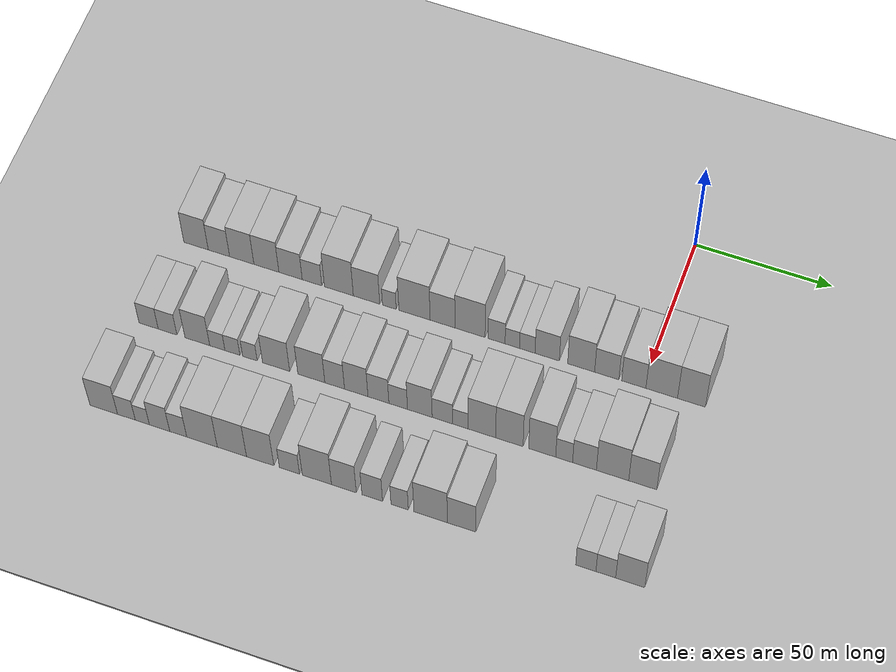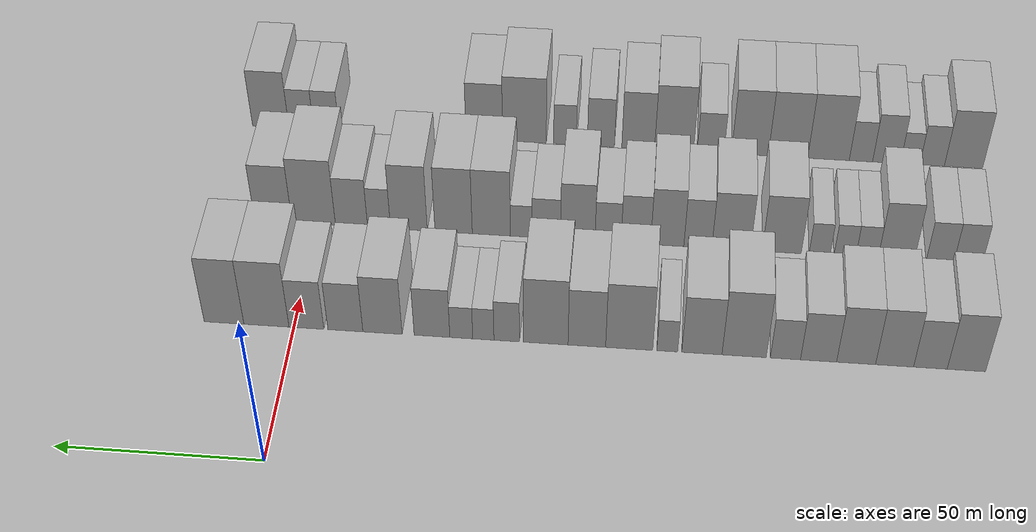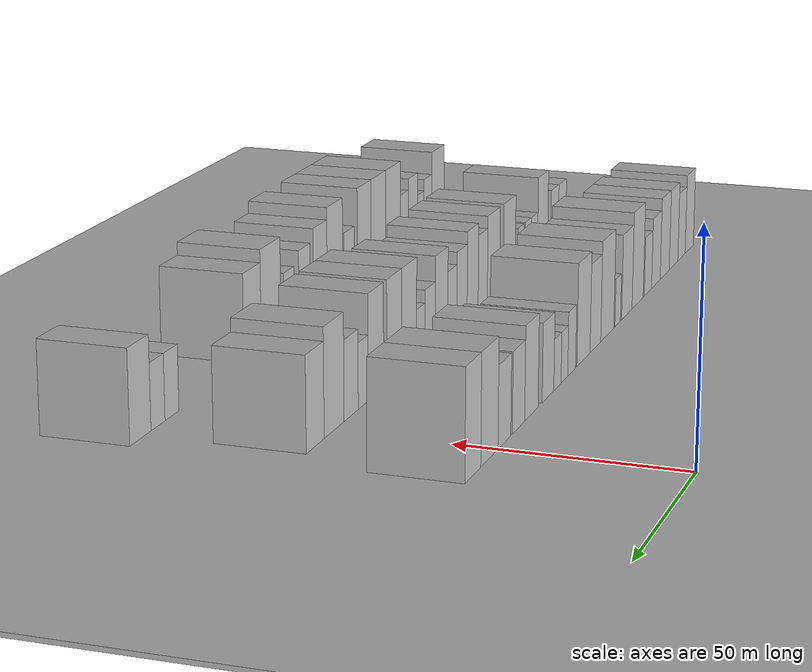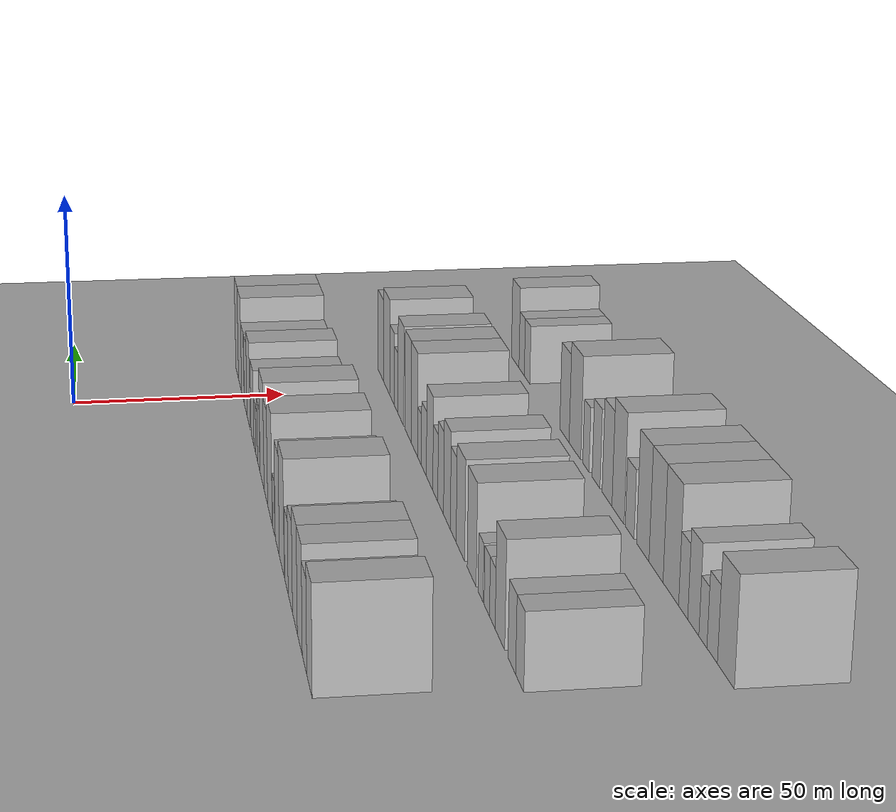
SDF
<sdf version="1.6">
 <world name="default">
  <include><name>ground_plane_1</name><uri>model://HANNAS_ground_plane</uri></include>
  <include>
   <name>ground_plane_2</name>
   <uri>model://HANNAS_ground_plane</uri>
   <pose>100 0 0  0 0 0</pose>
  </include>
  <model name="building_21">
   <static>1</static>
   <pose>50.0000 -164.9927 0 0.000000 0.000000 0.000000</pose>
   <link name="link">
    <pose>0 0 10.50 0 0 0</pose>
    <collision name="collision"><geometry><box><size>20.0000 9.2410 21.0000</size></box></geometry></collision>
    <visual name="visual">
     <cast_shadows>0</cast_shadows>
     <geometry><box><size>20.0000 9.2410 21.0000</size></box></geometry>
     <material>
      <script>
       <uri>model://HANNAS_wall/materials/scripts</uri>
       <uri>model://HANNAS_wall/materials/textures</uri>
       <name>vrc/HANNAS_wall</name>
      </script>
     </material>
    </visual>
   </link>
  </model>
  <model name="building_22">
   <static>1</static>
   <pose>50.0000 -156.3295 0 0.000000 0.000000 0.000000</pose>
   <link name="link">
    <pose>0 0 9.00 0 0 0</pose>
    <collision name="collision"><geometry><box><size>20.0000 8.0855 18.0000</size></box></geometry></collision>
    <visual name="visual">
     <cast_shadows>0</cast_shadows>
     <geometry><box><size>20.0000 8.0855 18.0000</size></box></geometry>
     <material>
      <script>
       <uri>model://HANNAS_wall/materials/scripts</uri>
       <uri>model://HANNAS_wall/materials/textures</uri>
       <name>vrc/HANNAS_wall</name>
      </script>
     </material>
    </visual>
   </link>
  </model>
  <model name="building_23">
   <static>1</static>
   <pose>50.0000 -147.6939 0 0.000000 0.000000 0.000000</pose>
   <link name="link">
    <pose>0 0 10.50 0 0 0</pose>
    <collision name="collision"><geometry><box><size>20.0000 9.1857 21.0000</size></box></geometry></collision>
    <visual name="visual">
     <cast_shadows>0</cast_shadows>
     <geometry><box><size>20.0000 9.1857 21.0000</size></box></geometry>
     <material>
      <script>
       <uri>model://HANNAS_wall/materials/scripts</uri>
       <uri>model://HANNAS_wall/materials/textures</uri>
       <name>vrc/HANNAS_wall</name>
      </script>
     </material>
    </visual>
   </link>
  </model>
  <model name="building_24">
   <static>1</static>
   <pose>50.0000 -138.3923 0 0.000000 0.000000 0.000000</pose>
   <link name="link">
    <pose>0 0 10.50 0 0 0</pose>
    <collision name="collision"><geometry><box><size>20.0000 9.4174 21.0000</size></box></geometry></collision>
    <visual name="visual">
     <cast_shadows>0</cast_shadows>
     <geometry><box><size>20.0000 9.4174 21.0000</size></box></geometry>
     <material>
      <script>
       <uri>model://HANNAS_wall/materials/scripts</uri>
       <uri>model://HANNAS_wall/materials/textures</uri>
       <name>vrc/HANNAS_wall</name>
      </script>
     </material>
    </visual>
   </link>
  </model>
  <model name="building_25">
   <static>1</static>
   <pose>50.0000 -129.3081 0 0.000000 0.000000 0.000000</pose>
   <link name="link">
    <pose>0 0 9.00 0 0 0</pose>
    <collision name="collision"><geometry><box><size>20.0000 8.7510 18.0000</size></box></geometry></collision>
    <visual name="visual">
     <cast_shadows>0</cast_shadows>
     <geometry><box><size>20.0000 8.7510 18.0000</size></box></geometry>
     <material>
      <script>
       <uri>model://HANNAS_wall/materials/scripts</uri>
       <uri>model://HANNAS_wall/materials/textures</uri>
       <name>vrc/HANNAS_wall</name>
      </script>
     </material>
    </visual>
   </link>
  </model>
  <model name="building_26">
   <static>1</static>
   <pose>50.0000 -121.2679 0 0.000000 0.000000 0.000000</pose>
   <link name="link">
    <pose>0 0 7.50 0 0 0</pose>
    <collision name="collision"><geometry><box><size>20.0000 7.3296 15.0000</size></box></geometry></collision>
    <visual name="visual">
     <cast_shadows>0</cast_shadows>
     <geometry><box><size>20.0000 7.3296 15.0000</size></box></geometry>
     <material>
      <script>
       <uri>model://HANNAS_wall/materials/scripts</uri>
       <uri>model://HANNAS_wall/materials/textures</uri>
       <name>vrc/HANNAS_wall</name>
      </script>
     </material>
    </visual>
   </link>
  </model>
  <model name="building_27">
   <static>1</static>
   <pose>50.0000 -111.2162 0 0.000000 0.000000 0.000000</pose>
   <link name="link">
    <pose>0 0 12.00 0 0 0</pose>
    <collision name="collision"><geometry><box><size>20.0000 10.7738 24.0000</size></box></geometry></collision>
    <visual name="visual">
     <cast_shadows>0</cast_shadows>
     <geometry><box><size>20.0000 10.7738 24.0000</size></box></geometry>
     <material>
      <script>
       <uri>model://HANNAS_wall/materials/scripts</uri>
       <uri>model://HANNAS_wall/materials/textures</uri>
       <name>vrc/HANNAS_wall</name>
      </script>
     </material>
    </visual>
   </link>
  </model>
  <model name="building_28">
   <static>1</static>
   <pose>50.0000 -100.9177 0 0.000000 0.000000 0.000000</pose>
   <link name="link">
    <pose>0 0 10.50 0 0 0</pose>
    <collision name="collision"><geometry><box><size>20.0000 9.8232 21.0000</size></box></geometry></collision>
    <visual name="visual">
     <cast_shadows>0</cast_shadows>
     <geometry><box><size>20.0000 9.8232 21.0000</size></box></geometry>
     <material>
      <script>
       <uri>model://HANNAS_wall/materials/scripts</uri>
       <uri>model://HANNAS_wall/materials/textures</uri>
       <name>vrc/HANNAS_wall</name>
      </script>
     </material>
    </visual>
   </link>
  </model>
  <model name="building_29">
   <static>1</static>
   <pose>50.0000 -92.4581 0 0.000000 0.000000 0.000000</pose>
   <link name="link">
    <pose>0 0 6.00 0 0 0</pose>
    <collision name="collision"><geometry><box><size>20.0000 5.0960 12.0000</size></box></geometry></collision>
    <visual name="visual">
     <cast_shadows>0</cast_shadows>
     <geometry><box><size>20.0000 5.0960 12.0000</size></box></geometry>
     <material>
      <script>
       <uri>model://HANNAS_wall/materials/scripts</uri>
       <uri>model://HANNAS_wall/materials/textures</uri>
       <name>vrc/HANNAS_wall</name>
      </script>
     </material>
    </visual>
   </link>
  </model>
  <model name="building_30">
   <static>1</static>
   <pose>50.0000 -83.1273 0 0.000000 0.000000 0.000000</pose>
   <link name="link">
    <pose>0 0 12.00 0 0 0</pose>
    <collision name="collision"><geometry><box><size>20.0000 11.5656 24.0000</size></box></geometry></collision>
    <visual name="visual">
     <cast_shadows>0</cast_shadows>
     <geometry><box><size>20.0000 11.5656 24.0000</size></box></geometry>
     <material>
      <script>
       <uri>model://HANNAS_wall/materials/scripts</uri>
       <uri>model://HANNAS_wall/materials/textures</uri>
       <name>vrc/HANNAS_wall</name>
      </script>
     </material>
    </visual>
   </link>
  </model>
  <model name="building_31">
   <static>1</static>
   <pose>50.0000 -72.7295 0 0.000000 0.000000 0.000000</pose>
   <link name="link">
    <pose>0 0 10.50 0 0 0</pose>
    <collision name="collision"><geometry><box><size>20.0000 9.2299 21.0000</size></box></geometry></collision>
    <visual name="visual">
     <cast_shadows>0</cast_shadows>
     <geometry><box><size>20.0000 9.2299 21.0000</size></box></geometry>
     <material>
      <script>
       <uri>model://HANNAS_wall/materials/scripts</uri>
       <uri>model://HANNAS_wall/materials/textures</uri>
       <name>vrc/HANNAS_wall</name>
      </script>
     </material>
    </visual>
   </link>
  </model>
  <model name="building_32">
   <static>1</static>
   <pose>50.0000 -62.6246 0 0.000000 0.000000 0.000000</pose>
   <link name="link">
    <pose>0 0 12.00 0 0 0</pose>
    <collision name="collision"><geometry><box><size>20.0000 10.9799 24.0000</size></box></geometry></collision>
    <visual name="visual">
     <cast_shadows>0</cast_shadows>
     <geometry><box><size>20.0000 10.9799 24.0000</size></box></geometry>
     <material>
      <script>
       <uri>model://HANNAS_wall/materials/scripts</uri>
       <uri>model://HANNAS_wall/materials/textures</uri>
       <name>vrc/HANNAS_wall</name>
      </script>
     </material>
    </visual>
   </link>
  </model>
  <model name="building_33">
   <static>1</static>
   <pose>50.0000 -52.9839 0 0.000000 0.000000 0.000000</pose>
   <link name="link">
    <pose>0 0 7.50 0 0 0</pose>
    <collision name="collision"><geometry><box><size>20.0000 6.3014 15.0000</size></box></geometry></collision>
    <visual name="visual">
     <cast_shadows>0</cast_shadows>
     <geometry><box><size>20.0000 6.3014 15.0000</size></box></geometry>
     <material>
      <script>
       <uri>model://HANNAS_wall/materials/scripts</uri>
       <uri>model://HANNAS_wall/materials/textures</uri>
       <name>vrc/HANNAS_wall</name>
      </script>
     </material>
    </visual>
   </link>
  </model>
  <model name="building_34">
   <static>1</static>
   <pose>50.0000 -47.2102 0 0.000000 0.000000 0.000000</pose>
   <link name="link">
    <pose>0 0 6.00 0 0 0</pose>
    <collision name="collision"><geometry><box><size>20.0000 5.2459 12.0000</size></box></geometry></collision>
    <visual name="visual">
     <cast_shadows>0</cast_shadows>
     <geometry><box><size>20.0000 5.2459 12.0000</size></box></geometry>
     <material>
      <script>
       <uri>model://HANNAS_wall/materials/scripts</uri>
       <uri>model://HANNAS_wall/materials/textures</uri>
       <name>vrc/HANNAS_wall</name>
      </script>
     </material>
    </visual>
   </link>
  </model>
  <model name="building_35">
   <static>1</static>
   <pose>50.0000 -41.7493 0 0.000000 0.000000 0.000000</pose>
   <link name="link">
    <pose>0 0 6.00 0 0 0</pose>
    <collision name="collision"><geometry><box><size>20.0000 5.6759 12.0000</size></box></geometry></collision>
    <visual name="visual">
     <cast_shadows>0</cast_shadows>
     <geometry><box><size>20.0000 5.6759 12.0000</size></box></geometry>
     <material>
      <script>
       <uri>model://HANNAS_wall/materials/scripts</uri>
       <uri>model://HANNAS_wall/materials/textures</uri>
       <name>vrc/HANNAS_wall</name>
      </script>
     </material>
    </visual>
   </link>
  </model>
  <model name="building_36">
   <static>1</static>
   <pose>50.0000 -34.4840 0 0.000000 0.000000 0.000000</pose>
   <link name="link">
    <pose>0 0 9.00 0 0 0</pose>
    <collision name="collision"><geometry><box><size>20.0000 8.8548 18.0000</size></box></geometry></collision>
    <visual name="visual">
     <cast_shadows>0</cast_shadows>
     <geometry><box><size>20.0000 8.8548 18.0000</size></box></geometry>
     <material>
      <script>
       <uri>model://HANNAS_wall/materials/scripts</uri>
       <uri>model://HANNAS_wall/materials/textures</uri>
       <name>vrc/HANNAS_wall</name>
      </script>
     </material>
    </visual>
   </link>
  </model>
  <model name="building_37">
   <static>1</static>
   <pose>50.0000 -22.1702 0 0.000000 0.000000 0.000000</pose>
   <link name="link">
    <pose>0 0 10.50 0 0 0</pose>
    <collision name="collision"><geometry><box><size>20.0000 9.7728 21.0000</size></box></geometry></collision>
    <visual name="visual">
     <cast_shadows>0</cast_shadows>
     <geometry><box><size>20.0000 9.7728 21.0000</size></box></geometry>
     <material>
      <script>
       <uri>model://HANNAS_wall/materials/scripts</uri>
       <uri>model://HANNAS_wall/materials/textures</uri>
       <name>vrc/HANNAS_wall</name>
      </script>
     </material>
    </visual>
   </link>
  </model>
  <model name="building_38">
   <static>1</static>
   <pose>50.0000 -12.9144 0 0.000000 0.000000 0.000000</pose>
   <link name="link">
    <pose>0 0 9.00 0 0 0</pose>
    <collision name="collision"><geometry><box><size>20.0000 8.7387 18.0000</size></box></geometry></collision>
    <visual name="visual">
     <cast_shadows>0</cast_shadows>
     <geometry><box><size>20.0000 8.7387 18.0000</size></box></geometry>
     <material>
      <script>
       <uri>model://HANNAS_wall/materials/scripts</uri>
       <uri>model://HANNAS_wall/materials/textures</uri>
       <name>vrc/HANNAS_wall</name>
      </script>
     </material>
    </visual>
   </link>
  </model>
  <model name="building_39">
   <static>1</static>
   <pose>50.0000 -3.1798 0 0.000000 0.000000 0.000000</pose>
   <link name="link">
    <pose>0 0 9.00 0 0 0</pose>
    <collision name="collision"><geometry><box><size>20.0000 8.7305 18.0000</size></box></geometry></collision>
    <visual name="visual">
     <cast_shadows>0</cast_shadows>
     <geometry><box><size>20.0000 8.7305 18.0000</size></box></geometry>
     <material>
      <script>
       <uri>model://HANNAS_wall/materials/scripts</uri>
       <uri>model://HANNAS_wall/materials/textures</uri>
       <name>vrc/HANNAS_wall</name>
      </script>
     </material>
    </visual>
   </link>
  </model>
  <model name="building_40">
   <static>1</static>
   <pose>50.0000 6.8428 0 0.000000 0.000000 0.000000</pose>
   <link name="link">
    <pose>0 0 12.00 0 0 0</pose>
    <collision name="collision"><geometry><box><size>20.0000 11.3148 24.0000</size></box></geometry></collision>
    <visual name="visual">
     <cast_shadows>0</cast_shadows>
     <geometry><box><size>20.0000 11.3148 24.0000</size></box></geometry>
     <material>
      <script>
       <uri>model://HANNAS_wall/materials/scripts</uri>
       <uri>model://HANNAS_wall/materials/textures</uri>
       <name>vrc/HANNAS_wall</name>
      </script>
     </material>
    </visual>
   </link>
  </model>
  <model name="building_41">
   <static>1</static>
   <pose>50.0000 17.4917 0 0.000000 0.000000 0.000000</pose>
   <link name="link">
    <pose>0 0 12.00 0 0 0</pose>
    <collision name="collision"><geometry><box><size>20.0000 9.9828 24.0000</size></box></geometry></collision>
    <visual name="visual">
     <cast_shadows>0</cast_shadows>
     <geometry><box><size>20.0000 9.9828 24.0000</size></box></geometry>
     <material>
      <script>
       <uri>model://HANNAS_wall/materials/scripts</uri>
       <uri>model://HANNAS_wall/materials/textures</uri>
       <name>vrc/HANNAS_wall</name>
      </script>
     </material>
    </visual>
   </link>
  </model>
  <model name="building_104">
   <static>1</static>
   <pose>85.0000 -168.2095 0 0.000000 0.000000 0.000000</pose>
   <link name="link">
    <pose>0 0 7.50 0 0 0</pose>
    <collision name="collision"><geometry><box><size>20.0000 7.1835 15.0000</size></box></geometry></collision>
    <visual name="visual">
     <cast_shadows>0</cast_shadows>
     <geometry><box><size>20.0000 7.1835 15.0000</size></box></geometry>
     <material>
      <script>
       <uri>model://HANNAS_wall/materials/scripts</uri>
       <uri>model://HANNAS_wall/materials/textures</uri>
       <name>vrc/HANNAS_wall</name>
      </script>
     </material>
    </visual>
   </link>
  </model>
  <model name="building_105">
   <static>1</static>
   <pose>85.0000 -161.1148 0 0.000000 0.000000 0.000000</pose>
   <link name="link">
    <pose>0 0 7.50 0 0 0</pose>
    <collision name="collision"><geometry><box><size>20.0000 7.0060 15.0000</size></box></geometry></collision>
    <visual name="visual">
     <cast_shadows>0</cast_shadows>
     <geometry><box><size>20.0000 7.0060 15.0000</size></box></geometry>
     <material>
      <script>
       <uri>model://HANNAS_wall/materials/scripts</uri>
       <uri>model://HANNAS_wall/materials/textures</uri>
       <name>vrc/HANNAS_wall</name>
      </script>
     </material>
    </visual>
   </link>
  </model>
  <model name="building_106">
   <static>1</static>
   <pose>85.0000 -150.0036 0 0.000000 0.000000 0.000000</pose>
   <link name="link">
    <pose>0 0 10.50 0 0 0</pose>
    <collision name="collision"><geometry><box><size>20.0000 9.2163 21.0000</size></box></geometry></collision>
    <visual name="visual">
     <cast_shadows>0</cast_shadows>
     <geometry><box><size>20.0000 9.2163 21.0000</size></box></geometry>
     <material>
      <script>
       <uri>model://HANNAS_wall/materials/scripts</uri>
       <uri>model://HANNAS_wall/materials/textures</uri>
       <name>vrc/HANNAS_wall</name>
      </script>
     </material>
    </visual>
   </link>
  </model>
  <model name="building_107">
   <static>1</static>
   <pose>85.0000 -142.5542 0 0.000000 0.000000 0.000000</pose>
   <link name="link">
    <pose>0 0 6.00 0 0 0</pose>
    <collision name="collision"><geometry><box><size>20.0000 5.6826 12.0000</size></box></geometry></collision>
    <visual name="visual">
     <cast_shadows>0</cast_shadows>
     <geometry><box><size>20.0000 5.6826 12.0000</size></box></geometry>
     <material>
      <script>
       <uri>model://HANNAS_wall/materials/scripts</uri>
       <uri>model://HANNAS_wall/materials/textures</uri>
       <name>vrc/HANNAS_wall</name>
      </script>
     </material>
    </visual>
   </link>
  </model>
  <model name="building_108">
   <static>1</static>
   <pose>85.0000 -136.9341 0 0.000000 0.000000 0.000000</pose>
   <link name="link">
    <pose>0 0 6.00 0 0 0</pose>
    <collision name="collision"><geometry><box><size>20.0000 5.5576 12.0000</size></box></geometry></collision>
    <visual name="visual">
     <cast_shadows>0</cast_shadows>
     <geometry><box><size>20.0000 5.5576 12.0000</size></box></geometry>
     <material>
      <script>
       <uri>model://HANNAS_wall/materials/scripts</uri>
       <uri>model://HANNAS_wall/materials/textures</uri>
       <name>vrc/HANNAS_wall</name>
      </script>
     </material>
    </visual>
   </link>
  </model>
  <model name="building_109">
   <static>1</static>
   <pose>85.0000 -130.4637 0 0.000000 0.000000 0.000000</pose>
   <link name="link">
    <pose>0 0 6.00 0 0 0</pose>
    <collision name="collision"><geometry><box><size>20.0000 5.3832 12.0000</size></box></geometry></collision>
    <visual name="visual">
     <cast_shadows>0</cast_shadows>
     <geometry><box><size>20.0000 5.3832 12.0000</size></box></geometry>
     <material>
      <script>
       <uri>model://HANNAS_wall/materials/scripts</uri>
       <uri>model://HANNAS_wall/materials/textures</uri>
       <name>vrc/HANNAS_wall</name>
      </script>
     </material>
    </visual>
   </link>
  </model>
  <model name="building_110">
   <static>1</static>
   <pose>85.0000 -120.7647 0 0.000000 0.000000 0.000000</pose>
   <link name="link">
    <pose>0 0 10.50 0 0 0</pose>
    <collision name="collision"><geometry><box><size>20.0000 10.0150 21.0000</size></box></geometry></collision>
    <visual name="visual">
     <cast_shadows>0</cast_shadows>
     <geometry><box><size>20.0000 10.0150 21.0000</size></box></geometry>
     <material>
      <script>
       <uri>model://HANNAS_wall/materials/scripts</uri>
       <uri>model://HANNAS_wall/materials/textures</uri>
       <name>vrc/HANNAS_wall</name>
      </script>
     </material>
    </visual>
   </link>
  </model>
  <model name="building_111">
   <static>1</static>
   <pose>85.0000 -107.7956 0 0.000000 0.000000 0.000000</pose>
   <link name="link">
    <pose>0 0 10.50 0 0 0</pose>
    <collision name="collision"><geometry><box><size>20.0000 9.9232 21.0000</size></box></geometry></collision>
    <visual name="visual">
     <cast_shadows>0</cast_shadows>
     <geometry><box><size>20.0000 9.9232 21.0000</size></box></geometry>
     <material>
      <script>
       <uri>model://HANNAS_wall/materials/scripts</uri>
       <uri>model://HANNAS_wall/materials/textures</uri>
       <name>vrc/HANNAS_wall</name>
      </script>
     </material>
    </visual>
   </link>
  </model>
  <model name="building_112">
   <static>1</static>
   <pose>85.0000 -99.2287 0 0.000000 0.000000 0.000000</pose>
   <link name="link">
    <pose>0 0 9.00 0 0 0</pose>
    <collision name="collision"><geometry><box><size>20.0000 7.2106 18.0000</size></box></geometry></collision>
    <visual name="visual">
     <cast_shadows>0</cast_shadows>
     <geometry><box><size>20.0000 7.2106 18.0000</size></box></geometry>
     <material>
      <script>
       <uri>model://HANNAS_wall/materials/scripts</uri>
       <uri>model://HANNAS_wall/materials/textures</uri>
       <name>vrc/HANNAS_wall</name>
      </script>
     </material>
    </visual>
   </link>
  </model>
  <model name="building_113">
   <static>1</static>
   <pose>85.0000 -91.3439 0 0.000000 0.000000 0.000000</pose>
   <link name="link">
    <pose>0 0 10.50 0 0 0</pose>
    <collision name="collision"><geometry><box><size>20.0000 8.5589 21.0000</size></box></geometry></collision>
    <visual name="visual">
     <cast_shadows>0</cast_shadows>
     <geometry><box><size>20.0000 8.5589 21.0000</size></box></geometry>
     <material>
      <script>
       <uri>model://HANNAS_wall/materials/scripts</uri>
       <uri>model://HANNAS_wall/materials/textures</uri>
       <name>vrc/HANNAS_wall</name>
      </script>
     </material>
    </visual>
   </link>
  </model>
  <model name="building_114">
   <static>1</static>
   <pose>85.0000 -83.2496 0 0.000000 0.000000 0.000000</pose>
   <link name="link">
    <pose>0 0 9.00 0 0 0</pose>
    <collision name="collision"><geometry><box><size>20.0000 7.6297 18.0000</size></box></geometry></collision>
    <visual name="visual">
     <cast_shadows>0</cast_shadows>
     <geometry><box><size>20.0000 7.6297 18.0000</size></box></geometry>
     <material>
      <script>
       <uri>model://HANNAS_wall/materials/scripts</uri>
       <uri>model://HANNAS_wall/materials/textures</uri>
       <name>vrc/HANNAS_wall</name>
      </script>
     </material>
    </visual>
   </link>
  </model>
  <model name="building_115">
   <static>1</static>
   <pose>85.0000 -76.0571 0 0.000000 0.000000 0.000000</pose>
   <link name="link">
    <pose>0 0 7.50 0 0 0</pose>
    <collision name="collision"><geometry><box><size>20.0000 6.7553 15.0000</size></box></geometry></collision>
    <visual name="visual">
     <cast_shadows>0</cast_shadows>
     <geometry><box><size>20.0000 6.7553 15.0000</size></box></geometry>
     <material>
      <script>
       <uri>model://HANNAS_wall/materials/scripts</uri>
       <uri>model://HANNAS_wall/materials/textures</uri>
       <name>vrc/HANNAS_wall</name>
      </script>
     </material>
    </visual>
   </link>
  </model>
  <model name="building_116">
   <static>1</static>
   <pose>85.0000 -68.2027 0 0.000000 0.000000 0.000000</pose>
   <link name="link">
    <pose>0 0 10.50 0 0 0</pose>
    <collision name="collision"><geometry><box><size>20.0000 8.9535 21.0000</size></box></geometry></collision>
    <visual name="visual">
     <cast_shadows>0</cast_shadows>
     <geometry><box><size>20.0000 8.9535 21.0000</size></box></geometry>
     <material>
      <script>
       <uri>model://HANNAS_wall/materials/scripts</uri>
       <uri>model://HANNAS_wall/materials/textures</uri>
       <name>vrc/HANNAS_wall</name>
      </script>
     </material>
    </visual>
   </link>
  </model>
  <model name="building_117">
   <static>1</static>
   <pose>85.0000 -60.0503 0 0.000000 0.000000 0.000000</pose>
   <link name="link">
    <pose>0 0 7.50 0 0 0</pose>
    <collision name="collision"><geometry><box><size>20.0000 7.3514 15.0000</size></box></geometry></collision>
    <visual name="visual">
     <cast_shadows>0</cast_shadows>
     <geometry><box><size>20.0000 7.3514 15.0000</size></box></geometry>
     <material>
      <script>
       <uri>model://HANNAS_wall/materials/scripts</uri>
       <uri>model://HANNAS_wall/materials/textures</uri>
       <name>vrc/HANNAS_wall</name>
      </script>
     </material>
    </visual>
   </link>
  </model>
  <model name="building_118">
   <static>1</static>
   <pose>85.0000 -53.5465 0 0.000000 0.000000 0.000000</pose>
   <link name="link">
    <pose>0 0 6.00 0 0 0</pose>
    <collision name="collision"><geometry><box><size>20.0000 5.6562 12.0000</size></box></geometry></collision>
    <visual name="visual">
     <cast_shadows>0</cast_shadows>
     <geometry><box><size>20.0000 5.6562 12.0000</size></box></geometry>
     <material>
      <script>
       <uri>model://HANNAS_wall/materials/scripts</uri>
       <uri>model://HANNAS_wall/materials/textures</uri>
       <name>vrc/HANNAS_wall</name>
      </script>
     </material>
    </visual>
   </link>
  </model>
  <model name="building_119">
   <static>1</static>
   <pose>85.0000 -45.7519 0 0.000000 0.000000 0.000000</pose>
   <link name="link">
    <pose>0 0 12.00 0 0 0</pose>
    <collision name="collision"><geometry><box><size>20.0000 9.9330 24.0000</size></box></geometry></collision>
    <visual name="visual">
     <cast_shadows>0</cast_shadows>
     <geometry><box><size>20.0000 9.9330 24.0000</size></box></geometry>
     <material>
      <script>
       <uri>model://HANNAS_wall/materials/scripts</uri>
       <uri>model://HANNAS_wall/materials/textures</uri>
       <name>vrc/HANNAS_wall</name>
      </script>
     </material>
    </visual>
   </link>
  </model>
  <model name="building_120">
   <static>1</static>
   <pose>85.0000 -35.9024 0 0.000000 0.000000 0.000000</pose>
   <link name="link">
    <pose>0 0 12.00 0 0 0</pose>
    <collision name="collision"><geometry><box><size>20.0000 9.7659 24.0000</size></box></geometry></collision>
    <visual name="visual">
     <cast_shadows>0</cast_shadows>
     <geometry><box><size>20.0000 9.7659 24.0000</size></box></geometry>
     <material>
      <script>
       <uri>model://HANNAS_wall/materials/scripts</uri>
       <uri>model://HANNAS_wall/materials/textures</uri>
       <name>vrc/HANNAS_wall</name>
      </script>
     </material>
    </visual>
   </link>
  </model>
  <model name="building_121">
   <static>1</static>
   <pose>85.0000 -24.2020 0 0.000000 0.000000 0.000000</pose>
   <link name="link">
    <pose>0 0 12.00 0 0 0</pose>
    <collision name="collision"><geometry><box><size>20.0000 9.6350 24.0000</size></box></geometry></collision>
    <visual name="visual">
     <cast_shadows>0</cast_shadows>
     <geometry><box><size>20.0000 9.6350 24.0000</size></box></geometry>
     <material>
      <script>
       <uri>model://HANNAS_wall/materials/scripts</uri>
       <uri>model://HANNAS_wall/materials/textures</uri>
       <name>vrc/HANNAS_wall</name>
      </script>
     </material>
    </visual>
   </link>
  </model>
  <model name="building_122">
   <static>1</static>
   <pose>85.0000 -16.3816 0 0.000000 0.000000 0.000000</pose>
   <link name="link">
    <pose>0 0 7.50 0 0 0</pose>
    <collision name="collision"><geometry><box><size>20.0000 6.0057 15.0000</size></box></geometry></collision>
    <visual name="visual">
     <cast_shadows>0</cast_shadows>
     <geometry><box><size>20.0000 6.0057 15.0000</size></box></geometry>
     <material>
      <script>
       <uri>model://HANNAS_wall/materials/scripts</uri>
       <uri>model://HANNAS_wall/materials/textures</uri>
       <name>vrc/HANNAS_wall</name>
      </script>
     </material>
    </visual>
   </link>
  </model>
  <model name="building_123">
   <static>1</static>
   <pose>85.0000 -9.1511 0 0.000000 0.000000 0.000000</pose>
   <link name="link">
    <pose>0 0 9.00 0 0 0</pose>
    <collision name="collision"><geometry><box><size>20.0000 8.4552 18.0000</size></box></geometry></collision>
    <visual name="visual">
     <cast_shadows>0</cast_shadows>
     <geometry><box><size>20.0000 8.4552 18.0000</size></box></geometry>
     <material>
      <script>
       <uri>model://HANNAS_wall/materials/scripts</uri>
       <uri>model://HANNAS_wall/materials/textures</uri>
       <name>vrc/HANNAS_wall</name>
      </script>
     </material>
    </visual>
   </link>
  </model>
  <model name="building_124">
   <static>1</static>
   <pose>85.0000 0.7955 0 0.000000 0.000000 0.000000</pose>
   <link name="link">
    <pose>0 0 12.00 0 0 0</pose>
    <collision name="collision"><geometry><box><size>20.0000 11.4381 24.0000</size></box></geometry></collision>
    <visual name="visual">
     <cast_shadows>0</cast_shadows>
     <geometry><box><size>20.0000 11.4381 24.0000</size></box></geometry>
     <material>
      <script>
       <uri>model://HANNAS_wall/materials/scripts</uri>
       <uri>model://HANNAS_wall/materials/textures</uri>
       <name>vrc/HANNAS_wall</name>
      </script>
     </material>
    </visual>
   </link>
  </model>
  <model name="building_125">
   <static>1</static>
   <pose>85.0000 11.4675 0 0.000000 0.000000 0.000000</pose>
   <link name="link">
    <pose>0 0 10.50 0 0 0</pose>
    <collision name="collision"><geometry><box><size>20.0000 9.9059 21.0000</size></box></geometry></collision>
    <visual name="visual">
     <cast_shadows>0</cast_shadows>
     <geometry><box><size>20.0000 9.9059 21.0000</size></box></geometry>
     <material>
      <script>
       <uri>model://HANNAS_wall/materials/scripts</uri>
       <uri>model://HANNAS_wall/materials/textures</uri>
       <name>vrc/HANNAS_wall</name>
      </script>
     </material>
    </visual>
   </link>
  </model>
  <model name="building_188">
   <static>1</static>
   <pose>120.0000 -169.8751 0 0.000000 0.000000 0.000000</pose>
   <link name="link">
    <pose>0 0 10.50 0 0 0</pose>
    <collision name="collision"><geometry><box><size>20.0000 10.1886 21.0000</size></box></geometry></collision>
    <visual name="visual">
     <cast_shadows>0</cast_shadows>
     <geometry><box><size>20.0000 10.1886 21.0000</size></box></geometry>
     <material>
      <script>
       <uri>model://HANNAS_wall/materials/scripts</uri>
       <uri>model://HANNAS_wall/materials/textures</uri>
       <name>vrc/HANNAS_wall</name>
      </script>
     </material>
    </visual>
   </link>
  </model>
  <model name="building_189">
   <static>1</static>
   <pose>120.0000 -161.5125 0 0.000000 0.000000 0.000000</pose>
   <link name="link">
    <pose>0 0 7.50 0 0 0</pose>
    <collision name="collision"><geometry><box><size>20.0000 6.5365 15.0000</size></box></geometry></collision>
    <visual name="visual">
     <cast_shadows>0</cast_shadows>
     <geometry><box><size>20.0000 6.5365 15.0000</size></box></geometry>
     <material>
      <script>
       <uri>model://HANNAS_wall/materials/scripts</uri>
       <uri>model://HANNAS_wall/materials/textures</uri>
       <name>vrc/HANNAS_wall</name>
      </script>
     </material>
    </visual>
   </link>
  </model>
  <model name="building_190">
   <static>1</static>
   <pose>120.0000 -155.6492 0 0.000000 0.000000 0.000000</pose>
   <link name="link">
    <pose>0 0 6.00 0 0 0</pose>
    <collision name="collision"><geometry><box><size>20.0000 5.1902 12.0000</size></box></geometry></collision>
    <visual name="visual">
     <cast_shadows>0</cast_shadows>
     <geometry><box><size>20.0000 5.1902 12.0000</size></box></geometry>
     <material>
      <script>
       <uri>model://HANNAS_wall/materials/scripts</uri>
       <uri>model://HANNAS_wall/materials/textures</uri>
       <name>vrc/HANNAS_wall</name>
      </script>
     </material>
    </visual>
   </link>
  </model>
  <model name="building_191">
   <static>1</static>
   <pose>120.0000 -149.3235 0 0.000000 0.000000 0.000000</pose>
   <link name="link">
    <pose>0 0 9.00 0 0 0</pose>
    <collision name="collision"><geometry><box><size>20.0000 7.4612 18.0000</size></box></geometry></collision>
    <visual name="visual">
     <cast_shadows>0</cast_shadows>
     <geometry><box><size>20.0000 7.4612 18.0000</size></box></geometry>
     <material>
      <script>
       <uri>model://HANNAS_wall/materials/scripts</uri>
       <uri>model://HANNAS_wall/materials/textures</uri>
       <name>vrc/HANNAS_wall</name>
      </script>
     </material>
    </visual>
   </link>
  </model>
  <model name="building_192">
   <static>1</static>
   <pose>120.0000 -142.4716 0 0.000000 0.000000 0.000000</pose>
   <link name="link">
    <pose>0 0 7.50 0 0 0</pose>
    <collision name="collision"><geometry><box><size>20.0000 6.2427 15.0000</size></box></geometry></collision>
    <visual name="visual">
     <cast_shadows>0</cast_shadows>
     <geometry><box><size>20.0000 6.2427 15.0000</size></box></geometry>
     <material>
      <script>
       <uri>model://HANNAS_wall/materials/scripts</uri>
       <uri>model://HANNAS_wall/materials/textures</uri>
       <name>vrc/HANNAS_wall</name>
      </script>
     </material>
    </visual>
   </link>
  </model>
  <model name="building_193">
   <static>1</static>
   <pose>120.0000 -133.7648 0 0.000000 0.000000 0.000000</pose>
   <link name="link">
    <pose>0 0 12.00 0 0 0</pose>
    <collision name="collision"><geometry><box><size>20.0000 11.1709 24.0000</size></box></geometry></collision>
    <visual name="visual">
     <cast_shadows>0</cast_shadows>
     <geometry><box><size>20.0000 11.1709 24.0000</size></box></geometry>
     <material>
      <script>
       <uri>model://HANNAS_wall/materials/scripts</uri>
       <uri>model://HANNAS_wall/materials/textures</uri>
       <name>vrc/HANNAS_wall</name>
      </script>
     </material>
    </visual>
   </link>
  </model>
  <model name="building_194">
   <static>1</static>
   <pose>120.0000 -122.8647 0 0.000000 0.000000 0.000000</pose>
   <link name="link">
    <pose>0 0 12.00 0 0 0</pose>
    <collision name="collision"><geometry><box><size>20.0000 10.6293 24.0000</size></box></geometry></collision>
    <visual name="visual">
     <cast_shadows>0</cast_shadows>
     <geometry><box><size>20.0000 10.6293 24.0000</size></box></geometry>
     <material>
      <script>
       <uri>model://HANNAS_wall/materials/scripts</uri>
       <uri>model://HANNAS_wall/materials/textures</uri>
       <name>vrc/HANNAS_wall</name>
      </script>
     </material>
    </visual>
   </link>
  </model>
  <model name="building_195">
   <static>1</static>
   <pose>120.0000 -112.5844 0 0.000000 0.000000 0.000000</pose>
   <link name="link">
    <pose>0 0 12.00 0 0 0</pose>
    <collision name="collision"><geometry><box><size>20.0000 9.9313 24.0000</size></box></geometry></collision>
    <visual name="visual">
     <cast_shadows>0</cast_shadows>
     <geometry><box><size>20.0000 9.9313 24.0000</size></box></geometry>
     <material>
      <script>
       <uri>model://HANNAS_wall/materials/scripts</uri>
       <uri>model://HANNAS_wall/materials/textures</uri>
       <name>vrc/HANNAS_wall</name>
      </script>
     </material>
    </visual>
   </link>
  </model>
  <model name="building_196">
   <static>1</static>
   <pose>120.0000 -101.9910 0 0.000000 0.000000 0.000000</pose>
   <link name="link">
    <pose>0 0 7.50 0 0 0</pose>
    <collision name="collision"><geometry><box><size>20.0000 7.2557 15.0000</size></box></geometry></collision>
    <visual name="visual">
     <cast_shadows>0</cast_shadows>
     <geometry><box><size>20.0000 7.2557 15.0000</size></box></geometry>
     <material>
      <script>
       <uri>model://HANNAS_wall/materials/scripts</uri>
       <uri>model://HANNAS_wall/materials/textures</uri>
       <name>vrc/HANNAS_wall</name>
      </script>
     </material>
    </visual>
   </link>
  </model>
  <model name="building_197">
   <static>1</static>
   <pose>120.0000 -92.0992 0 0.000000 0.000000 0.000000</pose>
   <link name="link">
    <pose>0 0 12.00 0 0 0</pose>
    <collision name="collision"><geometry><box><size>20.0000 10.5279 24.0000</size></box></geometry></collision>
    <visual name="visual">
     <cast_shadows>0</cast_shadows>
     <geometry><box><size>20.0000 10.5279 24.0000</size></box></geometry>
     <material>
      <script>
       <uri>model://HANNAS_wall/materials/scripts</uri>
       <uri>model://HANNAS_wall/materials/textures</uri>
       <name>vrc/HANNAS_wall</name>
      </script>
     </material>
    </visual>
   </link>
  </model>
  <model name="building_198">
   <static>1</static>
   <pose>120.0000 -82.3718 0 0.000000 0.000000 0.000000</pose>
   <link name="link">
    <pose>0 0 10.50 0 0 0</pose>
    <collision name="collision"><geometry><box><size>20.0000 8.9268 21.0000</size></box></geometry></collision>
    <visual name="visual">
     <cast_shadows>0</cast_shadows>
     <geometry><box><size>20.0000 8.9268 21.0000</size></box></geometry>
     <material>
      <script>
       <uri>model://HANNAS_wall/materials/scripts</uri>
       <uri>model://HANNAS_wall/materials/textures</uri>
       <name>vrc/HANNAS_wall</name>
      </script>
     </material>
    </visual>
   </link>
  </model>
  <model name="building_199">
   <static>1</static>
   <pose>120.0000 -72.2180 0 0.000000 0.000000 0.000000</pose>
   <link name="link">
    <pose>0 0 9.00 0 0 0</pose>
    <collision name="collision"><geometry><box><size>20.0000 7.3807 18.0000</size></box></geometry></collision>
    <visual name="visual">
     <cast_shadows>0</cast_shadows>
     <geometry><box><size>20.0000 7.3807 18.0000</size></box></geometry>
     <material>
      <script>
       <uri>model://HANNAS_wall/materials/scripts</uri>
       <uri>model://HANNAS_wall/materials/textures</uri>
       <name>vrc/HANNAS_wall</name>
      </script>
     </material>
    </visual>
   </link>
  </model>
  <model name="building_200">
   <static>1</static>
   <pose>120.0000 -62.4329 0 0.000000 0.000000 0.000000</pose>
   <link name="link">
    <pose>0 0 7.50 0 0 0</pose>
    <collision name="collision"><geometry><box><size>20.0000 6.1895 15.0000</size></box></geometry></collision>
    <visual name="visual">
     <cast_shadows>0</cast_shadows>
     <geometry><box><size>20.0000 6.1895 15.0000</size></box></geometry>
     <material>
      <script>
       <uri>model://HANNAS_wall/materials/scripts</uri>
       <uri>model://HANNAS_wall/materials/textures</uri>
       <name>vrc/HANNAS_wall</name>
      </script>
     </material>
    </visual>
   </link>
  </model>
  <model name="building_201">
   <static>1</static>
   <pose>120.0000 -51.3755 0 0.000000 0.000000 0.000000</pose>
   <link name="link">
    <pose>0 0 12.00 0 0 0</pose>
    <collision name="collision"><geometry><box><size>20.0000 11.9252 24.0000</size></box></geometry></collision>
    <visual name="visual">
     <cast_shadows>0</cast_shadows>
     <geometry><box><size>20.0000 11.9252 24.0000</size></box></geometry>
     <material>
      <script>
       <uri>model://HANNAS_wall/materials/scripts</uri>
       <uri>model://HANNAS_wall/materials/textures</uri>
       <name>vrc/HANNAS_wall</name>
      </script>
     </material>
    </visual>
   </link>
  </model>
  <model name="building_202">
   <static>1</static>
   <pose>120.0000 -40.4064 0 0.000000 0.000000 0.000000</pose>
   <link name="link">
    <pose>0 0 10.50 0 0 0</pose>
    <collision name="collision"><geometry><box><size>20.0000 10.0130 21.0000</size></box></geometry></collision>
    <visual name="visual">
     <cast_shadows>0</cast_shadows>
     <geometry><box><size>20.0000 10.0130 21.0000</size></box></geometry>
     <material>
      <script>
       <uri>model://HANNAS_wall/materials/scripts</uri>
       <uri>model://HANNAS_wall/materials/textures</uri>
       <name>vrc/HANNAS_wall</name>
      </script>
     </material>
    </visual>
   </link>
  </model>
  <model name="building_203">
   <static>1</static>
   <pose>120.0000 3.1449 0 0.000000 0.000000 0.000000</pose>
   <link name="link">
    <pose>0 0 7.50 0 0 0</pose>
    <collision name="collision"><geometry><box><size>20.0000 7.0298 15.0000</size></box></geometry></collision>
    <visual name="visual">
     <cast_shadows>0</cast_shadows>
     <geometry><box><size>20.0000 7.0298 15.0000</size></box></geometry>
     <material>
      <script>
       <uri>model://HANNAS_wall/materials/scripts</uri>
       <uri>model://HANNAS_wall/materials/textures</uri>
       <name>vrc/HANNAS_wall</name>
      </script>
     </material>
    </visual>
   </link>
  </model>
  <model name="building_204">
   <static>1</static>
   <pose>120.0000 10.0901 0 0.000000 0.000000 0.000000</pose>
   <link name="link">
    <pose>0 0 7.50 0 0 0</pose>
    <collision name="collision"><geometry><box><size>20.0000 6.8606 15.0000</size></box></geometry></collision>
    <visual name="visual">
     <cast_shadows>0</cast_shadows>
     <geometry><box><size>20.0000 6.8606 15.0000</size></box></geometry>
     <material>
      <script>
       <uri>model://HANNAS_wall/materials/scripts</uri>
       <uri>model://HANNAS_wall/materials/textures</uri>
       <name>vrc/HANNAS_wall</name>
      </script>
     </material>
    </visual>
   </link>
  </model>
  <model name="building_205">
   <static>1</static>
   <pose>120.0000 18.5708 0 0.000000 0.000000 0.000000</pose>
   <link name="link">
    <pose>0 0 10.50 0 0 0</pose>
    <collision name="collision"><geometry><box><size>20.0000 10.1008 21.0000</size></box></geometry></collision>
    <visual name="visual">
     <cast_shadows>0</cast_shadows>
     <geometry><box><size>20.0000 10.1008 21.0000</size></box></geometry>
     <material>
      <script>
       <uri>model://HANNAS_wall/materials/scripts</uri>
       <uri>model://HANNAS_wall/materials/textures</uri>
       <name>vrc/HANNAS_wall</name>
      </script>
     </material>
    </visual>
   </link>
  </model>
 </world>
</sdf>
